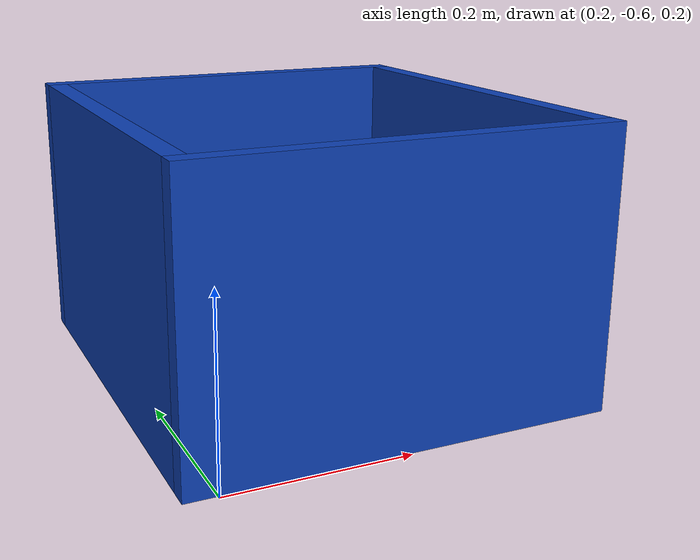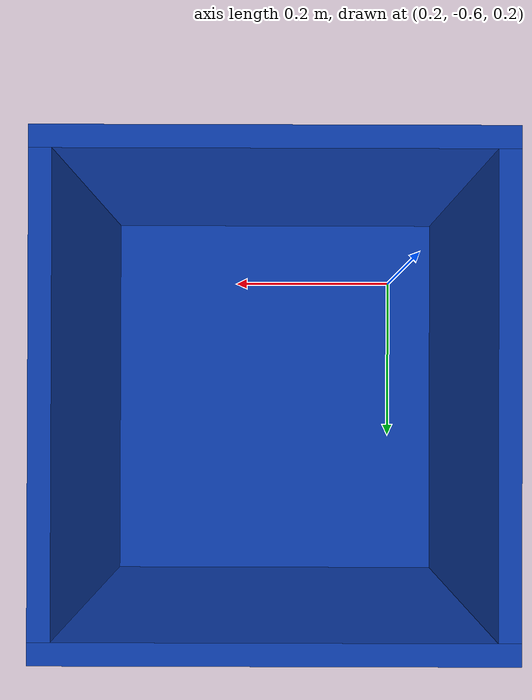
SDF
<?xml version="1.0"?>
<sdf version="1.10">
  <model name="collection_bin">
    <static>true</static>
    <link name="bin_link">
      <collision name="floor_collision">
        <pose>0.35 -0.45 0.26 0 0 0</pose>
        <geometry><box><size>0.38 0.42 0.02</size></box></geometry>
      </collision>
      <visual name="floor_visual">
        <pose>0.35 -0.45 0.26 0 0 0</pose>
        <geometry><box><size>0.38 0.42 0.02</size></box></geometry>
        <material><ambient>0.03 0.12 0.35 1</ambient><diffuse>0.05 0.25 0.70 1</diffuse></material>
      </visual>

      <collision name="left_wall_collision">
        <pose>0.15 -0.45 0.39 0 0 0</pose>
        <geometry><box><size>0.02 0.42 0.28</size></box></geometry>
      </collision>
      <visual name="left_wall_visual">
        <pose>0.15 -0.45 0.39 0 0 0</pose>
        <geometry><box><size>0.02 0.42 0.28</size></box></geometry>
        <material><ambient>0.03 0.12 0.35 1</ambient><diffuse>0.05 0.25 0.70 1</diffuse></material>
      </visual>

      <collision name="right_wall_collision">
        <pose>0.55 -0.45 0.39 0 0 0</pose>
        <geometry><box><size>0.02 0.42 0.28</size></box></geometry>
      </collision>
      <visual name="right_wall_visual">
        <pose>0.55 -0.45 0.39 0 0 0</pose>
        <geometry><box><size>0.02 0.42 0.28</size></box></geometry>
        <material><ambient>0.03 0.12 0.35 1</ambient><diffuse>0.05 0.25 0.70 1</diffuse></material>
      </visual>

      <collision name="front_wall_collision">
        <pose>0.35 -0.67 0.39 0 0 0</pose>
        <geometry><box><size>0.42 0.02 0.28</size></box></geometry>
      </collision>
      <visual name="front_wall_visual">
        <pose>0.35 -0.67 0.39 0 0 0</pose>
        <geometry><box><size>0.42 0.02 0.28</size></box></geometry>
        <material><ambient>0.03 0.12 0.35 1</ambient><diffuse>0.05 0.25 0.70 1</diffuse></material>
      </visual>

      <collision name="back_wall_collision">
        <pose>0.35 -0.23 0.39 0 0 0</pose>
        <geometry><box><size>0.42 0.02 0.28</size></box></geometry>
      </collision>
      <visual name="back_wall_visual">
        <pose>0.35 -0.23 0.39 0 0 0</pose>
        <geometry><box><size>0.42 0.02 0.28</size></box></geometry>
        <material><ambient>0.03 0.12 0.35 1</ambient><diffuse>0.05 0.25 0.70 1</diffuse></material>
      </visual>
    </link>
  </model>
</sdf>
